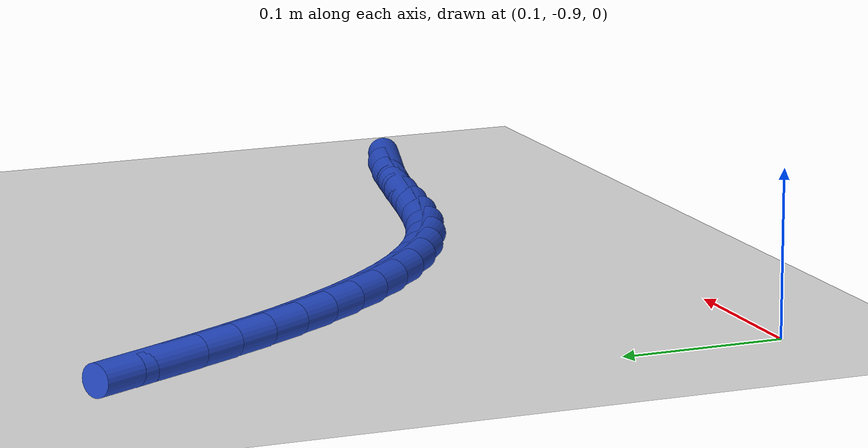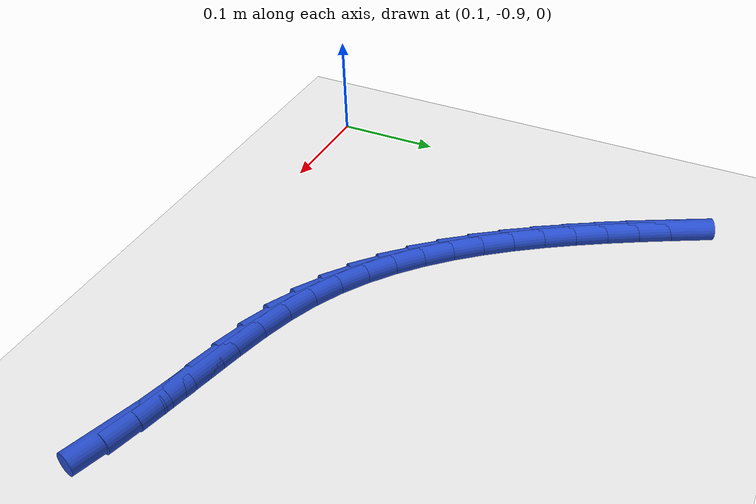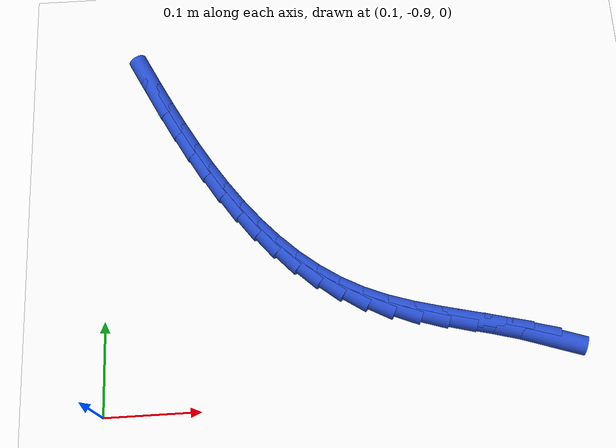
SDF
<sdf version="1.6">
 <world name="default">
  <model name="ground_plane">
   <static>1</static>
   <link name="link">
    <collision name="collision">
     <geometry><plane><normal>0 0 1</normal><size>100 100</size></plane></geometry>
     <surface><friction><ode><mu>100</mu><mu2>50</mu2></ode></friction></surface>
    </collision>
    <visual name="visual">
     <cast_shadows>0</cast_shadows>
     <geometry><plane><normal>0 0 1</normal><size>100 100</size></plane></geometry>
     <material>
      <script><uri>file://media/materials/scripts/gazebo.material</uri><name>Gazebo/WhiteGlow</name></script>
     </material>
    </visual>
   </link>
  </model>
  <model name="line">
   <link name="link_201">
    <pose>0.5579507430456034 -0.8457675729780209 0.01 0 1.57 -0.3161846944755193</pose>
    <collision name="collision">
     <geometry><cylinder><radius>0.01</radius><length>0.08</length></cylinder></geometry>
    </collision>
    <visual name="visual">
     <material>
      <script><name>Gazebo/Blue</name><uri>file://media/materials/scripts/gazebo.material</uri></script>
     </material>
     <geometry><cylinder><radius>0.01</radius><length>0.08</length></cylinder></geometry>
    </visual>
   </link>
   <link name="link_202">
    <pose>0.5314105206244224 -0.8370846623111491 0.01 0 1.57 -0.26078296720708216</pose>
    <collision name="collision">
     <geometry><cylinder><radius>0.01</radius><length>0.08</length></cylinder></geometry>
    </collision>
    <visual name="visual">
     <material>
      <script><name>Gazebo/Blue</name><uri>file://media/materials/scripts/gazebo.material</uri></script>
     </material>
     <geometry><cylinder><radius>0.01</radius><length>0.08</length></cylinder></geometry>
    </visual>
   </link>
   <link name="link_203">
    <pose>0.5040060620736274 -0.8297715059710928 0.01 0 1.57 -0.232899463719171</pose>
    <collision name="collision">
     <geometry><cylinder><radius>0.01</radius><length>0.08</length></cylinder></geometry>
    </collision>
    <visual name="visual">
     <material>
      <script><name>Gazebo/Blue</name><uri>file://media/materials/scripts/gazebo.material</uri></script>
     </material>
     <geometry><cylinder><radius>0.01</radius><length>0.08</length></cylinder></geometry>
    </visual>
   </link>
   <link name="link_204">
    <pose>0.4761486842229306 -0.8231636281361279 0.01 0 1.57 -0.23117928213524153</pose>
    <collision name="collision">
     <geometry><cylinder><radius>0.01</radius><length>0.08</length></cylinder></geometry>
    </collision>
    <visual name="visual">
     <material>
      <script><name>Gazebo/Blue</name><uri>file://media/materials/scripts/gazebo.material</uri></script>
     </material>
     <geometry><cylinder><radius>0.01</radius><length>0.08</length></cylinder></geometry>
    </visual>
   </link>
   <link name="link_205">
    <pose>0.4482497039020444 -0.8165965529845304 0.01 0 1.57 -0.2554952833973793</pose>
    <collision name="collision">
     <geometry><cylinder><radius>0.01</radius><length>0.08</length></cylinder></geometry>
    </collision>
    <visual name="visual">
     <material>
      <script><name>Gazebo/Blue</name><uri>file://media/materials/scripts/gazebo.material</uri></script>
     </material>
     <geometry><cylinder><radius>0.01</radius><length>0.08</length></cylinder></geometry>
    </visual>
   </link>
   <link name="link_206">
    <pose>0.42072043794068115 -0.8094058046945769 0.01 0 1.57 -0.30696928447997573</pose>
    <collision name="collision">
     <geometry><cylinder><radius>0.01</radius><length>0.08</length></cylinder></geometry>
    </collision>
    <visual name="visual">
     <material>
      <script><name>Gazebo/Blue</name><uri>file://media/materials/scripts/gazebo.material</uri></script>
     </material>
     <geometry><cylinder><radius>0.01</radius><length>0.08</length></cylinder></geometry>
    </visual>
   </link>
   <link name="link_207">
    <pose>0.39397220316855325 -0.8009269074445432 0.01 0 1.57 -0.3874708101622272</pose>
    <collision name="collision">
     <geometry><cylinder><radius>0.01</radius><length>0.08</length></cylinder></geometry>
    </collision>
    <visual name="visual">
     <material>
      <script><name>Gazebo/Blue</name><uri>file://media/materials/scripts/gazebo.material</uri></script>
     </material>
     <geometry><cylinder><radius>0.01</radius><length>0.08</length></cylinder></geometry>
    </visual>
   </link>
   <link name="link_208">
    <pose>0.36841531799656246 -0.7904971057502438 0.01 0 1.57 -0.48757769764746917</pose>
    <collision name="collision">
     <geometry><cylinder><radius>0.01</radius><length>0.08</length></cylinder></geometry>
    </collision>
    <visual name="visual">
     <material>
      <script><name>Gazebo/Blue</name><uri>file://media/materials/scripts/gazebo.material</uri></script>
     </material>
     <geometry><cylinder><radius>0.01</radius><length>0.08</length></cylinder></geometry>
    </visual>
   </link>
   <link name="link_209">
    <pose>0.34430900430283146 -0.7777139928254473 0.01 0 1.57 -0.5838384069909459</pose>
    <collision name="collision">
     <geometry><cylinder><radius>0.01</radius><length>0.08</length></cylinder></geometry>
    </collision>
    <visual name="visual">
     <material>
      <script><name>Gazebo/Blue</name><uri>file://media/materials/scripts/gazebo.material</uri></script>
     </material>
     <geometry><cylinder><radius>0.01</radius><length>0.08</length></cylinder></geometry>
    </visual>
   </link>
   <link name="link_210">
    <pose>0.32160114037356247 -0.7627116262043154 0.01 0 1.57 -0.6719264376061619</pose>
    <collision name="collision">
     <geometry><cylinder><radius>0.01</radius><length>0.08</length></cylinder></geometry>
    </collision>
    <visual name="visual">
     <material>
      <script><name>Gazebo/Blue</name><uri>file://media/materials/scripts/gazebo.material</uri></script>
     </material>
     <geometry><cylinder><radius>0.01</radius><length>0.08</length></cylinder></geometry>
    </visual>
   </link>
   <link name="link_211">
    <pose>0.30020120274465134 -0.7456902320187138 0.01 0 1.57 -0.7510128172295039</pose>
    <collision name="collision">
     <geometry><cylinder><radius>0.01</radius><length>0.08</length></cylinder></geometry>
    </collision>
    <visual name="visual">
     <material>
      <script><name>Gazebo/Blue</name><uri>file://media/materials/scripts/gazebo.material</uri></script>
     </material>
     <geometry><cylinder><radius>0.01</radius><length>0.08</length></cylinder></geometry>
    </visual>
   </link>
   <link name="link_212">
    <pose>0.28001866795199315 -0.7268500364005067 0.01 0 1.57 -0.8208921930892524</pose>
    <collision name="collision">
     <geometry><cylinder><radius>0.01</radius><length>0.08</length></cylinder></geometry>
    </collision>
    <visual name="visual">
     <material>
      <script><name>Gazebo/Blue</name><uri>file://media/materials/scripts/gazebo.material</uri></script>
     </material>
     <geometry><cylinder><radius>0.01</radius><length>0.08</length></cylinder></geometry>
    </visual>
   </link>
   <link name="link_213">
    <pose>0.2609630125314835 -0.7063912654815597 0.01 0 1.57 -0.8817943802049822</pose>
    <collision name="collision">
     <geometry><cylinder><radius>0.01</radius><length>0.08</length></cylinder></geometry>
    </collision>
    <visual name="visual">
     <material>
      <script><name>Gazebo/Blue</name><uri>file://media/materials/scripts/gazebo.material</uri></script>
     </material>
     <geometry><cylinder><radius>0.01</radius><length>0.08</length></cylinder></geometry>
    </visual>
   </link>
   <link name="link_214">
    <pose>0.24294371301901768 -0.6845141453937367 0.01 0 1.57 -0.9342021528188936</pose>
    <collision name="collision">
     <geometry><cylinder><radius>0.01</radius><length>0.08</length></cylinder></geometry>
    </collision>
    <visual name="visual">
     <material>
      <script><name>Gazebo/Blue</name><uri>file://media/materials/scripts/gazebo.material</uri></script>
     </material>
     <geometry><cylinder><radius>0.01</radius><length>0.08</length></cylinder></geometry>
    </visual>
   </link>
   <link name="link_215">
    <pose>0.2258702459504908 -0.6614189022689028 0.01 0 1.57 -0.978706977235882</pose>
    <collision name="collision">
     <geometry><cylinder><radius>0.01</radius><length>0.08</length></cylinder></geometry>
    </collision>
    <visual name="visual">
     <material>
      <script><name>Gazebo/Blue</name><uri>file://media/materials/scripts/gazebo.material</uri></script>
     </material>
     <geometry><cylinder><radius>0.01</radius><length>0.08</length></cylinder></geometry>
    </visual>
   </link>
   <link name="link_216">
    <pose>0.20965208786179904 -0.6373057622389237 0.01 0 1.57 -1.0159086817366472</pose>
    <collision name="collision">
     <geometry><cylinder><radius>0.01</radius><length>0.08</length></cylinder></geometry>
    </collision>
    <visual name="visual">
     <material>
      <script><name>Gazebo/Blue</name><uri>file://media/materials/scripts/gazebo.material</uri></script>
     </material>
     <geometry><cylinder><radius>0.01</radius><length>0.08</length></cylinder></geometry>
    </visual>
   </link>
   <link name="link_217">
    <pose>0.1941987152888374 -0.6123749514356635 0.01 0 1.57 -1.0463519664421865</pose>
    <collision name="collision">
     <geometry><cylinder><radius>0.01</radius><length>0.08</length></cylinder></geometry>
    </collision>
    <visual name="visual">
     <material>
      <script><name>Gazebo/Blue</name><uri>file://media/materials/scripts/gazebo.material</uri></script>
     </material>
     <geometry><cylinder><radius>0.01</radius><length>0.08</length></cylinder></geometry>
    </visual>
   </link>
   <link name="link_218">
    <pose>0.17941960476750113 -0.586826695990987 0.01 0 1.57 -1.070488831933714</pose>
    <collision name="collision">
     <geometry><cylinder><radius>0.01</radius><length>0.08</length></cylinder></geometry>
    </collision>
    <visual name="visual">
     <material>
      <script><name>Gazebo/Blue</name><uri>file://media/materials/scripts/gazebo.material</uri></script>
     </material>
     <geometry><cylinder><radius>0.01</radius><length>0.08</length></cylinder></geometry>
    </visual>
   </link>
   <link name="link_219">
    <pose>0.16522423283368592 -0.5608612220367598 0.01 0 1.57 -1.0886567874759987</pose>
    <collision name="collision">
     <geometry><cylinder><radius>0.01</radius><length>0.08</length></cylinder></geometry>
    </collision>
    <visual name="visual">
     <material>
      <script><name>Gazebo/Blue</name><uri>file://media/materials/scripts/gazebo.material</uri></script>
     </material>
     <geometry><cylinder><radius>0.01</radius><length>0.08</length></cylinder></geometry>
    </visual>
   </link>
   <link name="link_220">
    <pose>0.15152207602328693 -0.5346787557048458 0.01 0 1.57 -1.1010649219837545</pose>
    <collision name="collision">
     <geometry><cylinder><radius>0.01</radius><length>0.08</length></cylinder></geometry>
    </collision>
    <visual name="visual">
     <material>
      <script><name>Gazebo/Blue</name><uri>file://media/materials/scripts/gazebo.material</uri></script>
     </material>
     <geometry><cylinder><radius>0.01</radius><length>0.08</length></cylinder></geometry>
    </visual>
   </link>
  </model>
 </world>
</sdf>
